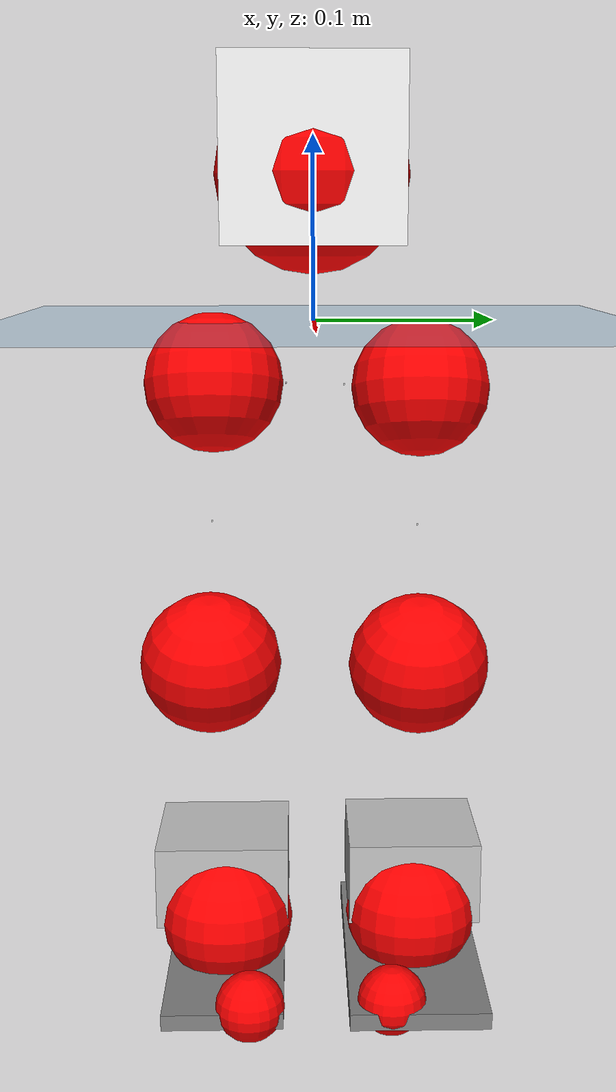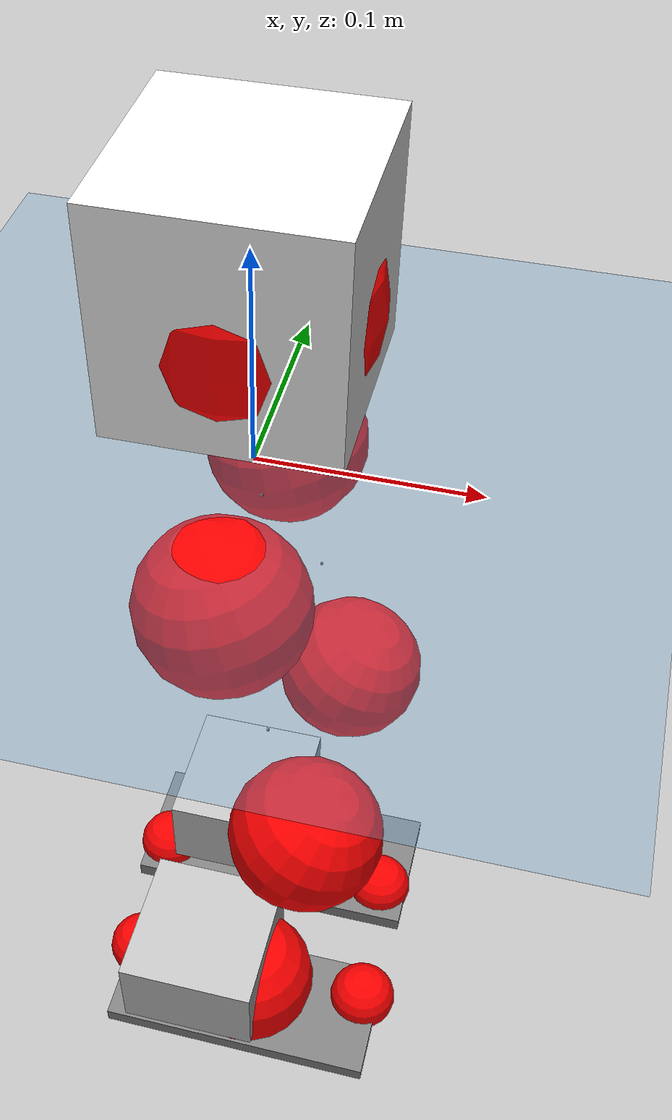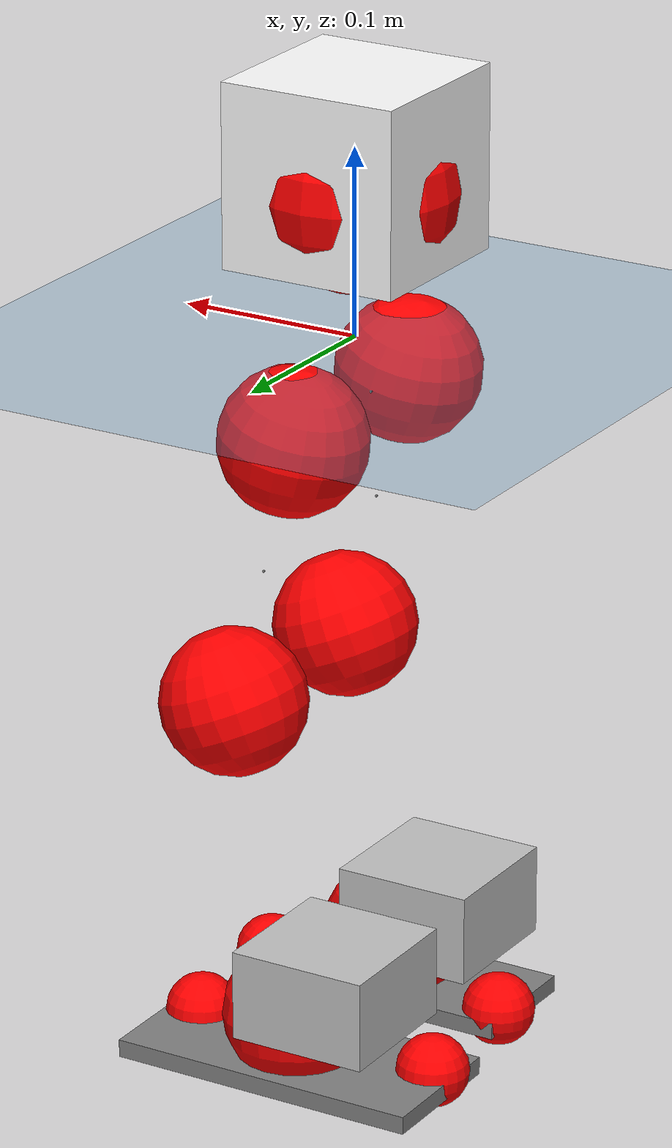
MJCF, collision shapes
<mujoco model="pi_12dof_release_v1">
  <compiler angle="radian" assetdir="assets" balanceinertia="true" inertiafromgeom="false"/>

  <option timestep="0.005" density="1.2" viscosity="2e-05"/>

  <size nkey="1"/>

  <visual>
    <quality shadowsize="8192"/>
    <map shadowclip="0.5"/>
  </visual>

  <default>
    <default class="/">
      <joint armature="0.01" damping="0.01" frictionloss="0.01"/>
      <geom contype="0" conaffinity="0" group="1" solref="-1000 -80"/>
      <site size="0.01 0.005 0.005" group="5"/>
      <general forcelimited="true" biastype="affine" gainprm="20" biasprm="0 -20 -0.5"/>
      <default class="foot">
        <geom size="0.0845 0.036 0.005" type="box" condim="6" group="4" priority="1" friction="0.9 0.2 0.2" solimp="0.015 1 0.005"/>
      </default>
      <default class="reward_collision_sphere">
        <geom group="5" rgba="1 0 0 1"/>
      </default>
    </default>
  </default>

  <asset>
    <texture type="skybox" colorspace="auto" name="//unnamed_texture_0" builtin="gradient" rgb1="0.95 0.95 0.95" rgb2="0.95 0.95 0.95" width="100" height="600"/>
    <texture type="2d" colorspace="auto" name="texplane" builtin="checker" rgb1="0.345 0.575 0.748" rgb2="0.345 0.575 0.748" markrgb="1 1 1" width="512" height="512"/>
    <material name="MatPlane" class="/" texture="texplane" texuniform="true" texrepeat="2 2" specular="0.9"/>
    <mesh name="baselink_1" class="/" file="baselink_1.STL"/>
    <mesh name="r_hip_pitch_link" class="/" file="r_hip_pitch_link.STL"/>
    <mesh name="r_hip_roll_link" class="/" file="r_hip_roll_link.STL"/>
    <mesh name="r_thigh_link" class="/" file="r_thigh_link.STL"/>
    <mesh name="r_calf_link" class="/" file="r_calf_link.STL"/>
    <mesh name="r_ankle_pitch_link" class="/" file="r_ankle_pitch_link.STL"/>
    <mesh name="r_ankle_roll_link" class="/" file="r_ankle_roll_link.STL"/>
    <mesh name="l_hip_pitch_link" class="/" file="l_hip_pitch_link.STL"/>
    <mesh name="l_hip_roll_link" class="/" file="l_hip_roll_link.STL"/>
    <mesh name="l_thigh_link" class="/" file="l_thigh_link.STL"/>
    <mesh name="l_calf_link" class="/" file="l_calf_link.STL"/>
    <mesh name="l_ankle_pitch_link" class="/" file="l_ankle_pitch_link.STL"/>
    <mesh name="l_ankle_roll_link" class="/" file="l_ankle_roll_link.STL"/>
  </asset>

  <worldbody>
    <geom name="floor" class="/" size="100 100 0.125" type="plane" group="0" material="MatPlane"/>
    <light name="toplight_shadow" class="/" pos="0 0 5" dir="0.0990148 0.0990148 -0.990148" type="directional" ambient="0.04 0.04 0.04" diffuse="0.55 0.55 0.55" specular="0.12 0.12 0.12"/>
    <light name="toplight_fill" class="/" pos="0 0 5" dir="0.0990148 0.0990148 -0.990148" type="directional" castshadow="false" ambient="0.04 0.04 0.04" diffuse="0.3 0.3 0.3" specular="0.08 0.08 0.08"/>
    <body name="trunk" pos="-0.000222983 -0.000622675 0.000440881" quat="1 -1.23118e-05 4.67539e-06 -8.66608e-06">
      <inertial pos="0.00145035 -0.00173501 0.0450621" quat="0.691649 0.00659182 -0.000218086 0.722204" mass="2.01404" diaginertia="0.0123013 0.00243606 0.00731768"/>
      <joint name="//unnamed_joint_0" type="free"/>
      <geom name="//unnamed_geom_1" class="/" type="mesh" density="0" rgba="1 1 1 1" mesh="baselink_1"/>
      <geom name="//unnamed_geom_2" class="/" size="0.0488827 0.0488827 0.0488827" pos="0 0 0.0895911" type="box" rgba="1 1 1 1"/>
      <geom name="//unnamed_geom_3" class="reward_collision_sphere" size="0.0537709" pos="0 0 0.0783922"/>
      <site name="imu" class="/" pos="0.0022904 -0.0031003 -0.00305993" size="0.00977653"/>
      <camera name="track" class="/" pos="0 -1.53612 0" quat="0.707107 0.707107 0 0" mode="trackcom"/>
      <camera name="ego_camera" class="/" pos="0.0783759 0 0.20158" quat="-0.5 -0.5 0.5 0.5"/>
      <body name="r_hip_pitch_link" pos="-6.21238e-05 -0.0151803 -0.0350287" quat="0.992167 -0.000181106 -0.12492 -0.000162837">
        <inertial pos="0.000742999 -0.0433384 -0.000577229" quat="-0.0175661 0.704499 -0.0278473 0.70894" mass="0.344697" diaginertia="0.000135144 2.61011e-05 0.000147457"/>
        <joint name="r_hip_pitch_joint" class="/" pos="0 0 0" axis="-0.00594887 -0.999982 -0.000573695" stiffness="0.000243443" range="-1.74465 1.26247" armature="0.00960948" damping="0.014024" frictionloss="0.00994828"/>
        <geom name="//unnamed_geom_4" class="/" type="mesh" density="0" rgba="0.75294 0.75294 0.75294 1" mesh="r_hip_pitch_link"/>
        <geom name="//unnamed_geom_5" class="/" size="0.000488827 0.000488827 0.000488827" type="box" rgba="0.75294 0.75294 0.75294 1"/>
        <body name="r_hip_roll_link" pos="0.00135135 -0.0404353 -0.000175766" quat="1 -4.46795e-05 0.000132532 -8.6374e-05">
          <inertial pos="-0.000531098 -0.000673682 -0.0679935" quat="0.701556 -0.0811651 -0.0833372 0.703055" mass="0.363517" diaginertia="0.000418851 7.4184e-05 0.000228205"/>
          <joint name="r_hip_roll_joint" class="/" pos="0 0 0" axis="-0.999999 -0.000506219 0.00140627" stiffness="0.00164887" range="-0.115614 0.515347" armature="0.00978435" damping="0.0049784" frictionloss="0.00968916"/>
          <geom name="//unnamed_geom_6" class="/" type="mesh" density="0" rgba="0.75294 0.75294 0.75294 1" mesh="r_hip_roll_link"/>
          <geom name="//unnamed_geom_7" class="/" size="0.000488827 0.000488827 0.000488827" type="box" rgba="0.75294 0.75294 0.75294 1"/>
          <geom name="//unnamed_geom_8" class="reward_collision_sphere" size="0.0391061"/>
          <body name="r_thigh_link" pos="0.000604039 -0.000956112 -0.0774443" quat="1 2.19721e-05 0.000188768 -0.000190857">
            <inertial pos="0.000604547 0.000594194 -0.0552435" quat="0.736561 0.676371 0.000124689 -0.000101178" mass="0.104897" diaginertia="0.00015515 2.59627e-05 9.97944e-05"/>
            <joint name="r_thigh_joint" class="/" pos="0 0 0" axis="-0.00110929 0.000446706 -0.999999" range="-0.304052 0.594355" armature="0.0102517" damping="0.00643806" frictionloss="0.00974991"/>
            <geom name="//unnamed_geom_9" class="/" type="mesh" density="0" rgba="0.75294 0.75294 0.75294 1" mesh="r_thigh_link"/>
            <geom name="//unnamed_geom_10" class="/" size="0.000488827 0.000488827 0.000488827" type="box" rgba="0.75294 0.75294 0.75294 1"/>
            <body name="r_calf_link" pos="-1.42366e-05 -0.000870263 -0.0786682" quat="0.947607 -4.86512e-05 0.319439 -3.93244e-05">
              <inertial pos="0.000690576 -0.00108163 -0.0784627" quat="0.999983 -0.00355559 0.000210973 0.00471457" mass="0.751353" diaginertia="0.00445101 0.000913288 0.000312004"/>
              <joint name="r_calf_joint" class="/" pos="0 0 0" axis="0.000844652 -0.999998 -0.0017003" range="-1.60571 0.632248" armature="0.00996339" damping="0.00854645" frictionloss="0.009348"/>
              <geom name="//unnamed_geom_11" class="/" type="mesh" density="0" rgba="0.75294 0.75294 0.75294 1" mesh="r_calf_link"/>
              <geom name="//unnamed_geom_12" class="/" size="0.000488827 0.000488827 0.000488827" type="box" rgba="0.75294 0.75294 0.75294 1"/>
              <geom name="//unnamed_geom_13" class="reward_collision_sphere" size="0.0391061"/>
              <body name="r_ankle_pitch_link" pos="0.00222133 0.00263962 -0.157792" quat="0.980007 0.000414834 -0.198964 -0.000201752">
                <inertial pos="0.00578071 0.00065945 -0.000554381" quat="0.000247939 0.706844 -0.00116888 0.707368" mass="0.166841" diaginertia="0.000389964 5.99894e-05 0.000216366"/>
                <joint name="r_ankle_pitch_joint" class="/" pos="0 0 0" axis="-0.00622505 -0.999944 -0.0085358" stiffness="0.000928593" range="-1.31699 0.536624" armature="0.00976384" damping="0.0087675" frictionloss="0.0102518"/>
                <geom name="//unnamed_geom_14" class="/" type="mesh" density="0" rgba="0.75294 0.75294 0.75294 1" mesh="r_ankle_pitch_link"/>
                <geom name="//unnamed_geom_15" class="/" size="0.0381285 0.0391061 0.0244413" type="box" rgba="0.75294 0.75294 0.75294 1"/>
                <body name="r_ankle_roll_link" pos="0.0777828 0.00234864 -0.000187776" quat="1 0.000613883 0.000258661 6.27198e-05">
                  <inertial pos="-0.0259989 5.99877e-05 -0.0162218" quat="0.560233 0.429833 0.435645 0.558208" mass="0.486818" diaginertia="0.00140665 0.000275449 0.00049357"/>
                  <joint name="r_ankle_roll_joint" class="/" pos="0 0 0" axis="-1 0.000773089 2.95145e-06" range="-0.190851 0.149209" armature="0.00968815" damping="0.0133285" frictionloss="0.0101815"/>
                  <geom name="//unnamed_geom_16" class="/" type="mesh" density="0" rgba="0.75294 0.75294 0.75294 1" mesh="r_ankle_roll_link"/>
                  <geom name="//unnamed_geom_17" class="/" type="mesh" rgba="0.75294 0.75294 0.75294 1" mesh="r_ankle_roll_link"/>
                  <geom name="right_foot" class="foot" size="0.0786218 0.0341094 0.00459048" pos="-0.0532956 0 -0.0492751"/>
                  <geom name="//unnamed_geom_19" class="reward_collision_sphere" size="0.0391061" pos="-0.0522506 0 -0.0223978"/>
                  <geom name="//unnamed_geom_20" class="reward_collision_sphere" size="0.0195531" pos="0.0156752 0.0153612 -0.0447956"/>
                  <geom name="//unnamed_geom_21" class="reward_collision_sphere" size="0.0195531" pos="-0.125401 0.0153612 -0.0447956"/>
                  <site name="right_foot" class="foot" pos="-0.0532956 0 -0.0492751" size="0.00977653"/>
                </body>
              </body>
            </body>
          </body>
        </body>
      </body>
      <body name="l_hip_pitch_link" pos="-0.000954698 0.0176186 -0.0361459" quat="0.992172 -0.000378503 -0.124875 -0.000141558">
        <inertial pos="0.000720743 0.0401285 -0.00121514" quat="-0.040444 0.705208 0.0268762 0.707336" mass="0.356492" diaginertia="0.00015798 2.77602e-05 0.000174763"/>
        <joint name="l_hip_pitch_joint" class="/" pos="0 0 0" axis="-0.00109661 0.999998 0.00145254" range="-1.24744 1.75215" armature="0.00976392" damping="0.000302779" frictionloss="0.00974598"/>
        <geom name="//unnamed_geom_22" class="/" type="mesh" density="0" rgba="0.75294 0.75294 0.75294 1" mesh="l_hip_pitch_link"/>
        <geom name="//unnamed_geom_23" class="/" size="0.000488827 0.000488827 0.000488827" type="box" rgba="0.75294 0.75294 0.75294 1"/>
        <body name="l_hip_roll_link" pos="0.000644132 0.0430896 -0.00178323" quat="1 2.56956e-05 -4.01978e-07 -6.90135e-05">
          <inertial pos="-0.000877373 -0.000517923 -0.0703341" quat="0.699501 -0.0779607 -0.0782129 0.706048" mass="0.36858" diaginertia="0.000412603 7.23588e-05 0.000222344"/>
          <joint name="l_hip_roll_joint" class="/" pos="0 0 0" axis="-1 -0.000453974 0.000642031" range="-0.536811 0.111543" armature="0.0101985" damping="0.0068511" frictionloss="0.00929725"/>
          <geom name="//unnamed_geom_24" class="/" type="mesh" density="0" rgba="0.75294 0.75294 0.75294 1" mesh="l_hip_roll_link"/>
          <geom name="//unnamed_geom_25" class="/" size="0.000488827 0.000488827 0.000488827" type="box" rgba="0.75294 0.75294 0.75294 1"/>
          <geom name="//unnamed_geom_26" class="reward_collision_sphere" size="0.0391061"/>
          <body name="l_thigh_link" pos="0.000277918 -0.00252889 -0.077345" quat="1 2.17084e-05 -6.20816e-05 0.000146113">
            <inertial pos="0.00051243 -0.00145666 -0.0528582" quat="0.67539 0.73746 -8.44945e-06 6.11453e-06" mass="0.104207" diaginertia="0.00015739 2.51532e-05 0.000101254"/>
            <joint name="l_thigh_joint" class="/" pos="0 0 0" axis="7.84569e-05 -0.000104865 -1" range="-0.590976 0.296286" armature="0.00995799" damping="0.00165366" frictionloss="0.00984977"/>
            <geom name="//unnamed_geom_27" class="/" type="mesh" density="0" rgba="0.75294 0.75294 0.75294 1" mesh="l_thigh_link"/>
            <geom name="//unnamed_geom_28" class="/" size="0.000488827 0.000488827 0.000488827" type="box" rgba="0.75294 0.75294 0.75294 1"/>
            <body name="l_calf_link" pos="-0.000883476 0.000118074 -0.0777112" quat="0.947653 -0.000447819 0.3193 0.000322576">
              <inertial pos="-0.000345809 0.0033054 -0.0788491" quat="0.999979 0.00377408 0.00138803 0.00507843" mass="0.75343" diaginertia="0.00438146 0.000916952 0.000311619"/>
              <joint name="l_calf_joint" class="/" pos="0 0 0" axis="-0.00120602 0.999999 -0.00114119" range="-0.653112 1.67232" armature="0.00940372" damping="0.00544428" frictionloss="0.00932394"/>
              <geom name="//unnamed_geom_29" class="/" type="mesh" density="0" rgba="0.75294 0.75294 0.75294 1" mesh="l_calf_link"/>
              <geom name="//unnamed_geom_30" class="/" size="0.000488827 0.000488827 0.000488827" type="box" rgba="0.75294 0.75294 0.75294 1"/>
              <geom name="//unnamed_geom_31" class="reward_collision_sphere" size="0.0391061"/>
              <body name="l_ankle_pitch_link" pos="-0.000206396 0.00177108 -0.157245" quat="0.980148 -0.000666577 -0.198266 0.00029544">
                <inertial pos="0.00518428 -0.00208865 -0.000800374" quat="-0.00177924 0.707102 0.00239965 0.707105" mass="0.165179" diaginertia="0.00038763 5.94139e-05 0.000212118"/>
                <joint name="l_ankle_pitch_joint" class="/" pos="0 0 0" axis="0.00228063 0.999996 -0.00159676" stiffness="0.00277773" range="-0.525618 1.30087" armature="0.0100215" damping="0.00579403" frictionloss="0.00974471"/>
                <geom name="//unnamed_geom_32" class="/" type="mesh" density="0" rgba="0.75294 0.75294 0.75294 1" mesh="l_ankle_pitch_link"/>
                <geom name="//unnamed_geom_33" class="/" size="0.0381285 0.0391061 0.0244413" type="box" rgba="0.75294 0.75294 0.75294 1"/>
                <body name="l_ankle_roll_link" pos="0.0763658 -0.00141625 0.00023962" quat="1 -0.000275115 -0.0003779 -0.000208592">
                  <inertial pos="-0.0234066 -0.000206673 -0.0153488" quat="0.56396 0.429238 0.432063 0.557696" mass="0.482862" diaginertia="0.00143658 0.000277545 0.000498319"/>
                  <joint name="l_ankle_roll_joint" class="/" pos="0 0 0" axis="-0.999936 0.00373133 0.0106879" range="-0.11241 0.144483" armature="0.0105995" damping="0.0177114" frictionloss="0.00919787"/>
                  <geom name="//unnamed_geom_34" class="/" type="mesh" density="0" rgba="0.75294 0.75294 0.75294 1" mesh="l_ankle_roll_link"/>
                  <geom name="//unnamed_geom_35" class="/" type="mesh" rgba="0.75294 0.75294 0.75294 1" mesh="l_ankle_roll_link"/>
                  <geom name="left_foot" class="foot" size="0.0862362 0.0395489 0.00483709" pos="-0.0532956 0 -0.0492751"/>
                  <geom name="//unnamed_geom_37" class="reward_collision_sphere" size="0.0391061" pos="-0.0522506 0 -0.0223978"/>
                  <geom name="//unnamed_geom_38" class="reward_collision_sphere" size="0.0195531" pos="0.0156752 -0.0153612 -0.0447956"/>
                  <geom name="//unnamed_geom_39" class="reward_collision_sphere" size="0.0195531" pos="-0.125401 -0.0153612 -0.0447956"/>
                  <site name="left_foot" class="foot" pos="-0.0532956 0 -0.0492751" size="0.00977653"/>
                </body>
              </body>
            </body>
          </body>
        </body>
      </body>
    </body>
  </worldbody>

  <contact>
    <pair class="/" geom1="floor" geom2="right_foot" name="//unnamed_contact_1"/>
    <pair class="/" geom1="floor" geom2="left_foot" name="//unnamed_contact_0"/>
  </contact>

  <actuator>
    <general name="r_hip_pitch_joint" class="/" joint="r_hip_pitch_joint" forcerange="-20.9296 20.9296" gainprm="19.8596" biasprm="0 -19.8596 -0.484278"/>
    <general name="r_hip_roll_joint" class="/" joint="r_hip_roll_joint" forcerange="-20.4319 20.4319" gainprm="19.8596" biasprm="0 -19.8596 -0.484278"/>
    <general name="r_thigh_joint" class="/" joint="r_thigh_joint" forcerange="-20.5998 20.5998" gainprm="19.8596" biasprm="0 -19.8596 -0.484278"/>
    <general name="r_calf_joint" class="/" joint="r_calf_joint" forcerange="-19.4299 19.4299" gainprm="19.8596" biasprm="0 -19.8596 -0.484278"/>
    <general name="r_ankle_pitch_joint" class="/" joint="r_ankle_pitch_joint" forcerange="-21.8601 21.8601" gainprm="19.8596" biasprm="0 -19.8596 -0.484278"/>
    <general name="r_ankle_roll_joint" class="/" joint="r_ankle_roll_joint" forcerange="-21.8745 21.8745" gainprm="19.8596" biasprm="0 -19.8596 -0.484278"/>
    <general name="l_hip_pitch_joint" class="/" joint="l_hip_pitch_joint" forcerange="-22.2705 22.2705" gainprm="19.8596" biasprm="0 -19.8596 -0.484278"/>
    <general name="l_hip_roll_joint" class="/" joint="l_hip_roll_joint" forcerange="-20.5803 20.5803" gainprm="19.8596" biasprm="0 -19.8596 -0.484278"/>
    <general name="l_thigh_joint" class="/" joint="l_thigh_joint" forcerange="-21.1341 21.1341" gainprm="19.8596" biasprm="0 -19.8596 -0.484278"/>
    <general name="l_calf_joint" class="/" joint="l_calf_joint" forcerange="-21.898 21.898" gainprm="19.8596" biasprm="0 -19.8596 -0.484278"/>
    <general name="l_ankle_pitch_joint" class="/" joint="l_ankle_pitch_joint" forcerange="-21.8833 21.8833" gainprm="19.8596" biasprm="0 -19.8596 -0.484278"/>
    <general name="l_ankle_roll_joint" class="/" joint="l_ankle_roll_joint" forcerange="-20.4177 20.4177" gainprm="19.8596" biasprm="0 -19.8596 -0.484278"/>
  </actuator>

  <sensor>
    <gyro site="imu" name="imu_angular_velocity"/>
    <velocimeter site="imu" name="imu_linear_velocity"/>
    <framelinvel objtype="site" objname="left_foot" name="left_foot_global_linear_velocity"/>
    <framelinvel objtype="site" objname="right_foot" name="right_foot_global_linear_velocity"/>
  </sensor>

  <keyframe>
    <key name="home" qpos="0 0 0.291 1 0 0 0 0.4 0 0 -0.8 0.4 0 -0.4 0 0 0.8 -0.4 0"/>
  </keyframe>
</mujoco>
